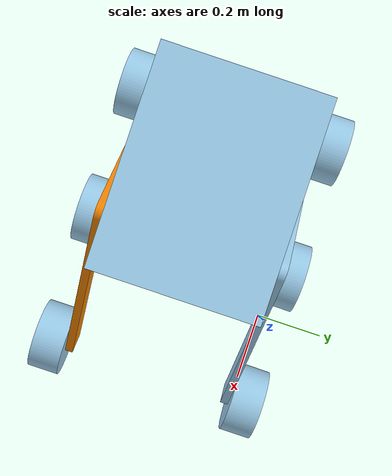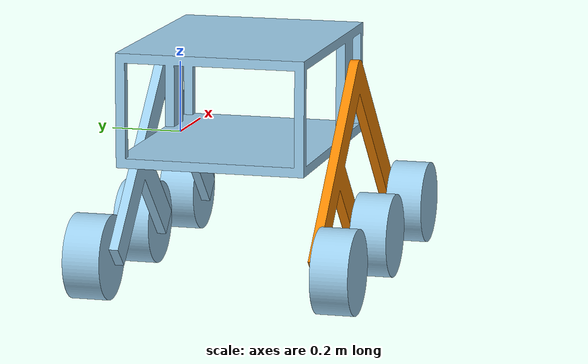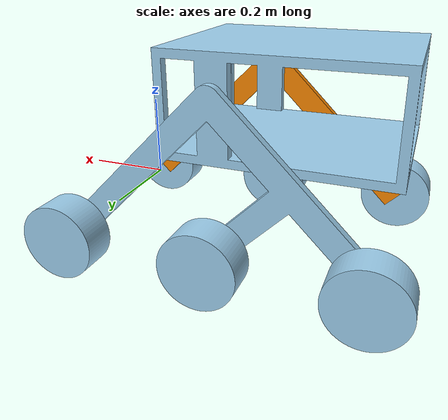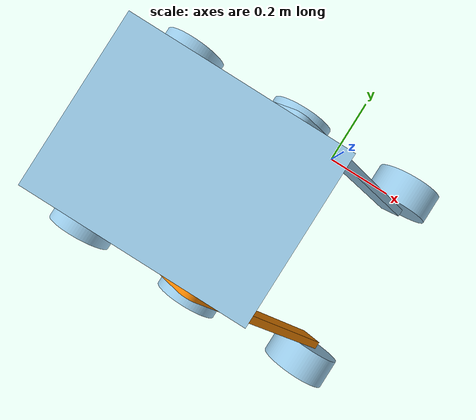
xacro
<?xml version="1.0" ?>
<robot xmlns:xacro="http://www.ros.org/wiki/xacro" name="test-robot">

  <!-- Include the Onshape URDF without changing its CAD frame. -->
  <xacro:include filename="$(find robot_description)/urc-robot/urdf/robot.urdf" />

  <link name="base_link"/>
  <joint name="chassis_base_link_joint" type="fixed">
    <parent link="base_link"/>
    <child link="chassis"/>
    <origin xyz="0 0 0" rpy="0 0 ${pi / 2}"/> <!-- do not change this from pi / 2 -->
  </joint>

  <xacro:arg name="use_sim" default="false" />
  <xacro:arg name="enable_rgbd" default="true"/>
  <xacro:arg name="enable_side_cameras" default="true"/>
  <xacro:arg name="enable_lidar" default="true"/>
  <xacro:include filename="$(find robot_description)/urc-robot/urdf/sensors.gazebo.xacro"/>
  <!-- Middle axle is approximately (-0.15, -0.268) in base_link.
       Front is +X; side cameras face outward; LiDAR clears the rear roof. -->
  <xacro:if value="$(arg use_sim)">
    <xacro:if value="$(arg enable_rgbd)">
      <xacro:rover_camera name="front_rgbd" xyz="0.03 -0.267839 0.25" yaw="0" rgbd="true"/>
    </xacro:if>
    <xacro:if value="$(arg enable_side_cameras)">
      <xacro:rover_camera name="left_camera" xyz="-0.25 0.005 0.25" yaw="${pi / 2}"/>
      <xacro:rover_camera name="right_camera" xyz="-0.25 -0.54 0.25" yaw="${-pi / 2}"/>
    </xacro:if>
    <xacro:if value="$(arg enable_lidar)">
      <xacro:rover_lidar xyz="-0.55 -0.267839 0.38"/>
    </xacro:if>
  </xacro:if>

  <ros2_control name="RobotSystem" type="system">
    <hardware>
      <xacro:if value="$(arg use_sim)">
        <plugin>gz_ros2_control/GazeboSimSystem</plugin>
      </xacro:if>
      <xacro:unless value="$(arg use_sim)">
        <plugin>rocker_bogie_control/RockerBogieSystemHardware</plugin>
      </xacro:unless>
    </hardware>

    <!-- Front Left -->
    <joint name="front_left_wheel_joint">
      <command_interface name="velocity">
        <param name="min">-10</param>
        <param name="max">10</param>
      </command_interface>
      <state_interface name="position"/>
      <state_interface name="velocity"/>
    </joint>

    <!-- Mid Left -->
    <joint name="mid_left_wheel_joint">
      <command_interface name="velocity">
        <param name="min">-10</param>
        <param name="max">10</param>
      </command_interface>
      <state_interface name="position"/>
      <state_interface name="velocity"/>
    </joint>

    <!-- Back Left -->
    <joint name="back_left_wheel_joint">
      <command_interface name="velocity">
        <param name="min">-10</param>
        <param name="max">10</param>
      </command_interface>
      <state_interface name="position"/>
      <state_interface name="velocity"/>
    </joint>

    <!-- Front Right -->
    <joint name="front_right_wheel_joint">
      <command_interface name="velocity">
        <param name="min">-10</param>
        <param name="max">10</param>
      </command_interface>
      <state_interface name="position"/>
      <state_interface name="velocity"/>
    </joint>

    <!-- Mid Right -->
    <joint name="mid_right_wheel_joint">
      <command_interface name="velocity">
        <param name="min">-10</param>
        <param name="max">10</param>
      </command_interface>
      <state_interface name="position"/>
      <state_interface name="velocity"/>
    </joint>

    <!-- Back Right -->
    <joint name="back_right_wheel_joint">
      <command_interface name="velocity">
        <param name="min">-10</param>
        <param name="max">10</param>
      </command_interface>
      <state_interface name="position"/>
      <state_interface name="velocity"/>
    </joint>
  </ros2_control>

  <xacro:if value="$(arg use_sim)">
    <gazebo>
      <plugin filename="libgz_ros2_control-system.so"
              name="gz_ros2_control::GazeboSimROS2ControlPlugin">
        <parameters>$(find rocker_bogie_control)/config/ros2_controllers.yaml</parameters>
      </plugin>
    </gazebo>
  </xacro:if>
</robot>

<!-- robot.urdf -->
<robot name="test-robot">
  <!-- Link chassis -->
  <link name="chassis">
    <inertial>
      <origin xyz="-0.267839 0.236882 0.0746766" rpy="0 0 0"/>
      <mass value="19.9998"/>
      <inertia ixx="1.60493" ixy="-0" ixz="-0" iyy="1.55529" iyz="-0.131187" izz="2.02854"/>
    </inertial>
    <!-- Part chassis -->
    <visual>
      <origin xyz="-0.521839 0.646545 0.02613" rpy="0 -0 0"/>
      <geometry>
        <mesh filename="package://robot_description/urc-robot/assets/chassis.stl"/>
      </geometry>
      <material name="chassis_material">
        <color rgba="0.615686 0.811765 0.929412 1"/>
      </material>
    </visual>
    <collision>
      <origin xyz="-0.521839 0.646545 0.02613" rpy="0 -0 0"/>
      <geometry>
        <mesh filename="package://robot_description/urc-robot/assets/chassis.stl"/>
      </geometry>
    </collision>
    <!-- Part part_1_mirrored -->
    <visual>
      <origin xyz="-0.526919 0.149975 0.21536" rpy="3.14159 -0 3.14159"/>
      <geometry>
        <mesh filename="package://robot_description/urc-robot/assets/part_1_mirrored.stl"/>
      </geometry>
      <material name="part_1_mirrored_material">
        <color rgba="0.972549 0.529412 0.00392157 1"/>
      </material>
    </visual>
    <collision>
      <origin xyz="-0.526919 0.149975 0.21536" rpy="3.14159 -0 3.14159"/>
      <geometry>
        <mesh filename="package://robot_description/urc-robot/assets/part_1_mirrored.stl"/>
      </geometry>
    </collision>
    <!-- Part part_1 -->
    <visual>
      <origin xyz="-0.00875944 0.149975 0.21536" rpy="0 -0 0"/>
      <geometry>
        <mesh filename="package://robot_description/urc-robot/assets/part_1.stl"/>
      </geometry>
      <material name="part_1_material">
        <color rgba="0.615686 0.811765 0.929412 1"/>
      </material>
    </visual>
    <collision>
      <origin xyz="-0.00875944 0.149975 0.21536" rpy="0 -0 0"/>
      <geometry>
        <mesh filename="package://robot_description/urc-robot/assets/part_1.stl"/>
      </geometry>
    </collision>
  </link>
  <!-- Link wheel -->
  <link name="wheel">
    <inertial>
      <origin xyz="0 -0 -0.0508" rpy="0 0 0"/>
      <mass value="1.00017"/>
      <inertia ixx="0.00412704" ixy="0" ixz="0" iyy="0.00412704" iyz="0" izz="0.00653336"/>
    </inertial>
    <!-- Part wheel -->
    <visual>
      <origin xyz="0 0 0" rpy="1.5708 1.5708 0"/>
      <geometry>
        <mesh filename="package://robot_description/urc-robot/assets/wheel.stl"/>
      </geometry>
      <material name="wheel_material">
        <color rgba="0.615686 0.811765 0.929412 1"/>
      </material>
    </visual>
    <collision>
      <origin xyz="0 0 0" rpy="1.5708 1.5708 0"/>
      <geometry>
        <mesh filename="package://robot_description/urc-robot/assets/wheel.stl"/>
      </geometry>
    </collision>
  </link>
  <!-- Joint from chassis to wheel -->
  <joint name="front_left_wheel_joint" type="continuous">
    <origin xyz="0.0166406 -0.294525 -0.22914" rpy="-1.5708 -0 1.5708"/>
    <parent link="chassis"/>
    <child link="wheel"/>
    <axis xyz="0 0 -1"/>
    <limit effort="10" velocity="10"/>
  </joint>
  <!-- Link wheel_2 -->
  <link name="wheel_2">
    <inertial>
      <origin xyz="-0 -0 -0.0508" rpy="0 0 0"/>
      <mass value="1.00017"/>
      <inertia ixx="0.00412704" ixy="0" ixz="0" iyy="0.00412704" iyz="0" izz="0.00653336"/>
    </inertial>
    <!-- Part wheel_2 -->
    <visual>
      <origin xyz="-0 0 0" rpy="1.5708 1.5708 0"/>
      <geometry>
        <mesh filename="package://robot_description/urc-robot/assets/wheel.stl"/>
      </geometry>
      <material name="wheel_2_material">
        <color rgba="0.615686 0.811765 0.929412 1"/>
      </material>
    </visual>
    <collision>
      <origin xyz="-0 0 0" rpy="1.5708 1.5708 0"/>
      <geometry>
        <mesh filename="package://robot_description/urc-robot/assets/wheel.stl"/>
      </geometry>
    </collision>
  </link>
  <!-- Joint from chassis to wheel_2 -->
  <joint name="mid_left_wheel_joint" type="continuous">
    <origin xyz="0.0166406 0.149975 -0.22914" rpy="-1.5708 -0 1.5708"/>
    <parent link="chassis"/>
    <child link="wheel_2"/>
    <axis xyz="0 0 -1"/>
    <limit effort="10" velocity="10"/>
  </joint>
  <!-- Link wheel_3 -->
  <link name="wheel_3">
    <inertial>
      <origin xyz="0 -0 -0.0508" rpy="0 0 0"/>
      <mass value="1.00017"/>
      <inertia ixx="0.00412704" ixy="0" ixz="0" iyy="0.00412704" iyz="0" izz="0.00653336"/>
    </inertial>
    <!-- Part wheel_3 -->
    <visual>
      <origin xyz="0 0 0" rpy="1.5708 1.5708 0"/>
      <geometry>
        <mesh filename="package://robot_description/urc-robot/assets/wheel.stl"/>
      </geometry>
      <material name="wheel_3_material">
        <color rgba="0.615686 0.811765 0.929412 1"/>
      </material>
    </visual>
    <collision>
      <origin xyz="0 0 0" rpy="1.5708 1.5708 0"/>
      <geometry>
        <mesh filename="package://robot_description/urc-robot/assets/wheel.stl"/>
      </geometry>
    </collision>
  </link>
  <!-- Joint from chassis to wheel_3 -->
  <joint name="back_left_wheel_joint" type="continuous">
    <origin xyz="0.0166406 0.594475 -0.22914" rpy="-1.5708 -0 1.5708"/>
    <parent link="chassis"/>
    <child link="wheel_3"/>
    <axis xyz="0 0 -1"/>
    <limit effort="10" velocity="10"/>
  </joint>
  <!-- Link wheel_4 -->
  <link name="wheel_4">
    <inertial>
      <origin xyz="0 0 -0.0508" rpy="0 0 0"/>
      <mass value="1.00017"/>
      <inertia ixx="0.00412704" ixy="0" ixz="0" iyy="0.00412704" iyz="0" izz="0.00653336"/>
    </inertial>
    <!-- Part wheel_4 -->
    <visual>
      <origin xyz="0 0 -0.1016" rpy="-1.5708 -1.5708 0"/>
      <geometry>
        <mesh filename="package://robot_description/urc-robot/assets/wheel.stl"/>
      </geometry>
      <material name="wheel_4_material">
        <color rgba="0.615686 0.811765 0.929412 1"/>
      </material>
    </visual>
    <collision>
      <origin xyz="0 0 -0.1016" rpy="-1.5708 -1.5708 0"/>
      <geometry>
        <mesh filename="package://robot_description/urc-robot/assets/wheel.stl"/>
      </geometry>
    </collision>
  </link>
  <!-- Joint from chassis to wheel_4 -->
  <joint name="front_right_wheel_joint" type="continuous">
    <origin xyz="-0.552319 -0.294525 -0.22914" rpy="1.5708 -0 1.5708"/>
    <parent link="chassis"/>
    <child link="wheel_4"/>
    <axis xyz="0 0 1"/>
    <limit effort="10" velocity="10"/>
  </joint>
  <!-- Link wheel_5 -->
  <link name="wheel_5">
    <inertial>
      <origin xyz="0 0 -0.0508" rpy="0 0 0"/>
      <mass value="1.00017"/>
      <inertia ixx="0.00412704" ixy="0" ixz="0" iyy="0.00412704" iyz="0" izz="0.00653336"/>
    </inertial>
    <!-- Part wheel_5 -->
    <visual>
      <origin xyz="0 0 -0.1016" rpy="-1.5708 -1.5708 0"/>
      <geometry>
        <mesh filename="package://robot_description/urc-robot/assets/wheel.stl"/>
      </geometry>
      <material name="wheel_5_material">
        <color rgba="0.615686 0.811765 0.929412 1"/>
      </material>
    </visual>
    <collision>
      <origin xyz="0 0 -0.1016" rpy="-1.5708 -1.5708 0"/>
      <geometry>
        <mesh filename="package://robot_description/urc-robot/assets/wheel.stl"/>
      </geometry>
    </collision>
  </link>
  <!-- Joint from chassis to wheel_5 -->
  <joint name="mid_right_wheel_joint" type="continuous">
    <origin xyz="-0.552319 0.149975 -0.22914" rpy="1.5708 -0 1.5708"/>
    <parent link="chassis"/>
    <child link="wheel_5"/>
    <axis xyz="0 0 1"/>
    <limit effort="10" velocity="10"/>
  </joint>
  <!-- Link wheel_6 -->
  <link name="wheel_6">
    <inertial>
      <origin xyz="0 0 -0.0508" rpy="0 0 0"/>
      <mass value="1.00017"/>
      <inertia ixx="0.00412704" ixy="0" ixz="0" iyy="0.00412704" iyz="0" izz="0.00653336"/>
    </inertial>
    <!-- Part wheel_6 -->
    <visual>
      <origin xyz="0 0 -0.1016" rpy="-1.5708 -1.5708 0"/>
      <geometry>
        <mesh filename="package://robot_description/urc-robot/assets/wheel.stl"/>
      </geometry>
      <material name="wheel_6_material">
        <color rgba="0.615686 0.811765 0.929412 1"/>
      </material>
    </visual>
    <collision>
      <origin xyz="0 0 -0.1016" rpy="-1.5708 -1.5708 0"/>
      <geometry>
        <mesh filename="package://robot_description/urc-robot/assets/wheel.stl"/>
      </geometry>
    </collision>
  </link>
  <!-- Joint from chassis to wheel_6 -->
  <joint name="back_right_wheel_joint" type="continuous">
    <origin xyz="-0.552319 0.594475 -0.22914" rpy="1.5708 -0 1.5708"/>
    <parent link="chassis"/>
    <child link="wheel_6"/>
    <axis xyz="0 0 1"/>
    <limit effort="10" velocity="10"/>
  </joint>
</robot>
